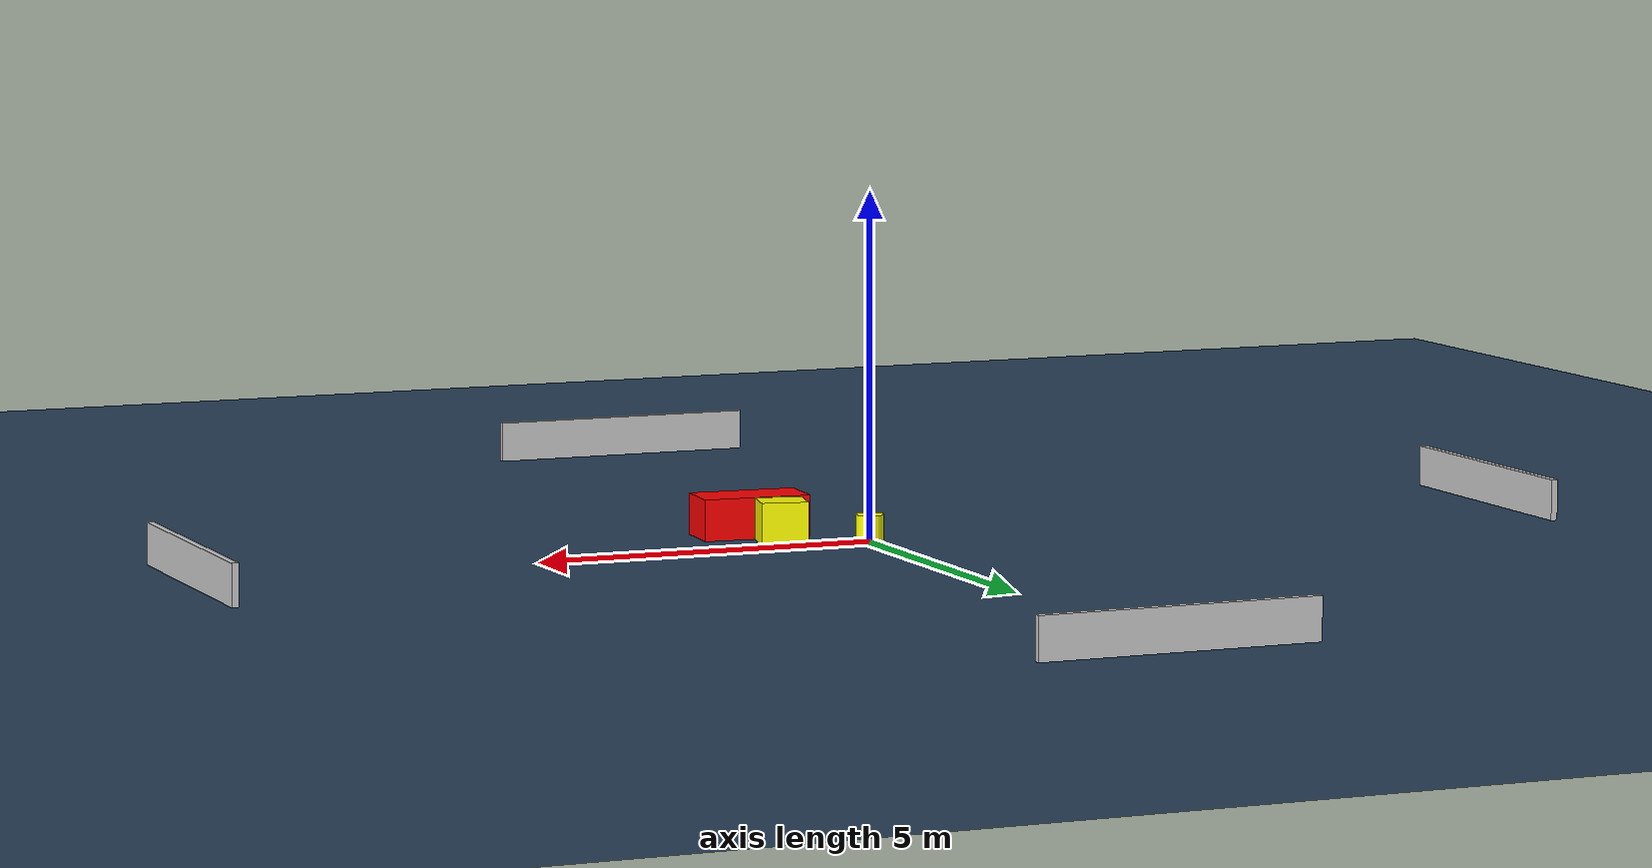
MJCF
<?xml version="1.0" ?>
<mujoco model="generated_environment">
  <option timestep="0.01" integrator="RK4" cone="elliptic"/>
  <default>
    <geom density="1"/>
  </default>
  <asset>
    <texture builtin="gradient" height="3072" name="skybox" rgb1="0.3 0.5 0.7" rgb2="0 0 0" type="skybox" width="512"/>
    <texture builtin="checker" height="300" name="groundplane" rgb1="0.2 0.3 0.4" rgb2="0.1 0.2 0.3" type="2d" width="300"/>
    <material name="groundplane" reflectance="0.2" texrepeat="5 5" texture="groundplane"/>
  </asset>
  <worldbody>
    <light dir="0 0 -1" directional="true" pos="0 0 1.5"/>
    <geom condim="3" friction="0.5 0.005 0.001" material="groundplane" name="floor" pos="0 0 0" size="0 0 0.05" type="plane"/>
    <body name="walls">
      <geom name="wall_1" condim="4" pos="-10.0 0.0 0.3" rgba="0.800000011920929 0.800000011920929 0.800000011920929 1.0" size="0.05 2.0 0.3" type="box"/>
      <geom name="wall_2" condim="4" pos="10.0 0.0 0.3" rgba="0.800000011920929 0.800000011920929 0.800000011920929 1.0" size="0.05 2.0 0.3" type="box"/>
      <geom name="wall_3" condim="4" pos="0.0 -10.0 0.3" rgba="0.800000011920929 0.800000011920929 0.800000011920929 1.0" size="2.0 0.05 0.3" type="box"/>
      <geom name="wall_4" condim="4" pos="0.0 10.0 0.3" rgba="0.800000011920929 0.800000011920929 0.800000011920929 1.0" size="2.0 0.05 0.3" type="box"/>
    </body>
    <body name="robot">
      <joint name="joint_x" type="slide" pos="0 0 0" axis="1 0 0"/>
      <joint name="joint_y" type="slide" pos="0 0 0" axis="0 1 0"/>
      <geom name="robot" type="cylinder" pos="0.0 0.0 0.2" size="0.2 0.2 0.0" mass="5.0" friction="1.0 0.005 0.0001" condim="4" rgba="1.0 1.0 0.0 1.0"/>
    </body>
    <body name="obstacle_1_movable">
      <geom name="obstacle_1_movable" condim="4" pos="1.140341425952369 -0.5279605242523528 0.3" euler="0 0 347.8556452105452" friction="0.0 0.005 0.001" rgba="1.0 1.0 0.0 1.0" size="0.3382998345889101 0.2803358347707023 0.3" type="box" mass="0.1"/>
      <joint type="free"/>
    </body>
    <body name="obstacle_2_static">
      <geom name="obstacle_2_static" condim="4" pos="1.3339308367872678 -1.2747240844691643 0.3" euler="0 0 265.98508632312047" friction="0.0 0.005 0.001" rgba="1.0 0.0 0.0 1.0" size="0.38362192162693287 0.7878200759594693 0.3" type="box"/>
    </body>
  </worldbody>
  <actuator>
    <motor name="actuator_x" joint="joint_x" gear="1" ctrlrange="-1 1"/>
    <motor name="actuator_y" joint="joint_y" gear="1" ctrlrange="-1 1"/>
  </actuator>
</mujoco>
